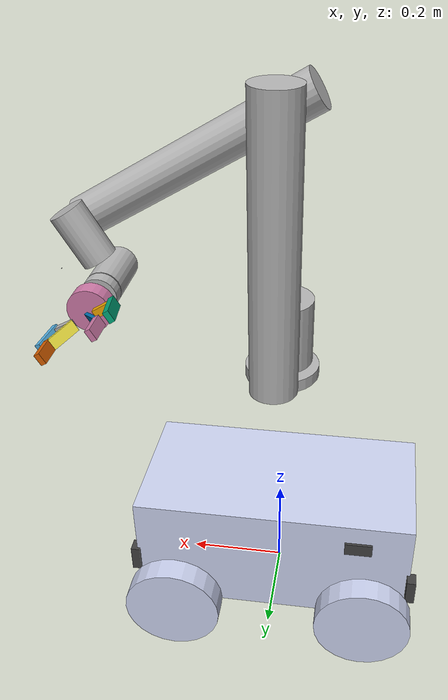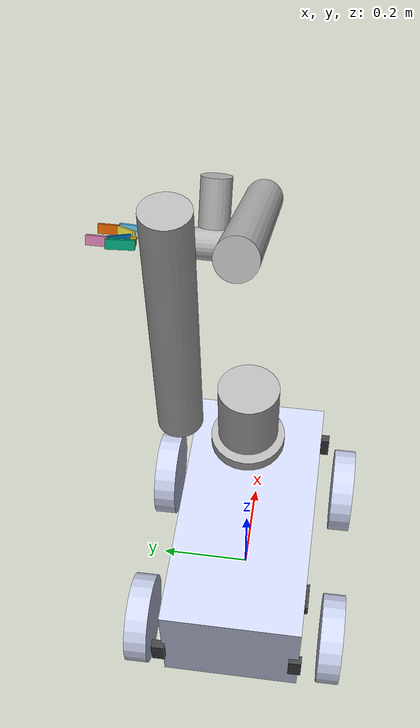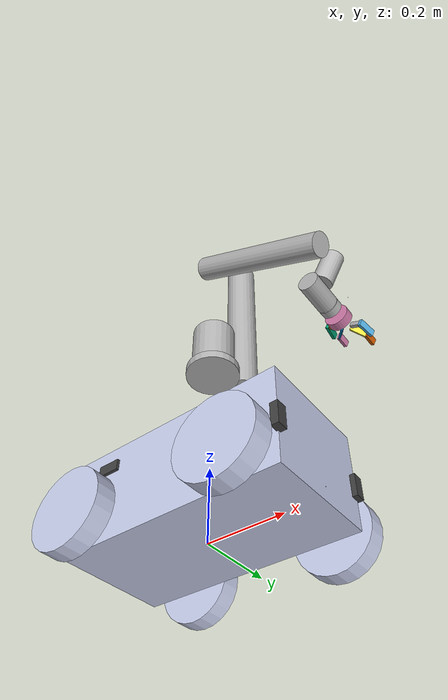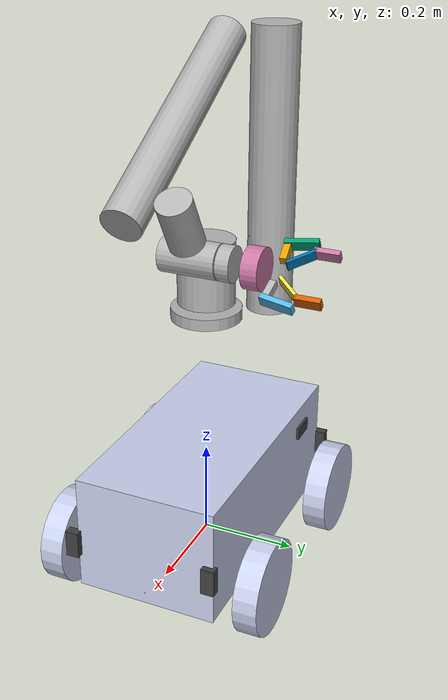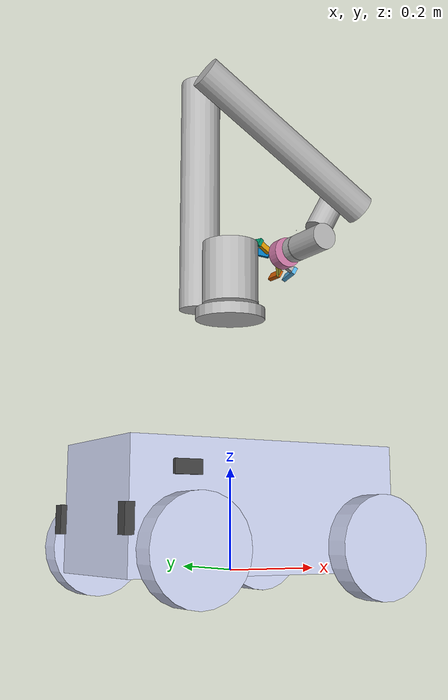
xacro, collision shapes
<?xml version="1.0"?>

<!--
  Project Name: ebot
  Created on:   2.10.2020
  Author: ROS team
  Copyright (c) 2020 eYantra IITB
-->

<robot name="ebot" xmlns:xacro="http://www.ros.org/wiki/xacro">

<!-- ebot arm -->
  <xacro:include filename="$(find ebot_description)/urdf/ebot.xacro" />
  <xacro:include filename="$(find ur_description)/urdf/common.gazebo.xacro" />
  <xacro:include filename="$(find ur_description)/urdf/e_ur5.urdf.xacro" />
  <xacro:include filename="$(find robotiq_85_description)/urdf/e_robotiq_85_gripper.urdf.xacro" />

  <xacro:ur5_robot prefix="" joint_limited="false"/>

  <joint name="ebot_joint" type="fixed">
    <parent link="ebot_base" />
    <child link = "base_link" />
    <origin xyz="0 0 0.521" rpy="0.0 0.0 0" />  <!--576 height from ground-->
  </joint>

  <xacro:robotiq_85_gripper prefix="" parent="wrist_3_link" >
    <origin xyz="0 0.1 0" rpy="0 0 ${pi/2}"/>
  </xacro:robotiq_85_gripper>

<!-- realsense camera for arm-->

 <joint name="intelrealsense2" type="fixed">
    <axis xyz="0 0 0" />
    <origin xyz="0 0.1 -0.08" rpy="3.14 0 1.57"/>
    <parent link="wrist_3_link"/>
    <child link="camera_link2"/>
  </joint>
<link name="camera_link2">
    <collision>
      <origin xyz="0.02 0 0" rpy="0 0 0"/>
      <geometry>
        <box size="0.001 0.001 0.001"/>
      </geometry>
    </collision>

    <visual>
      <origin xyz="0 0 0" rpy="1.5707 0 1.5707"/>
      <geometry>
         <mesh filename="package://ebot_description/meshes/NAVRS.STL" />
      </geometry>
    </visual>

    <inertial>
      <mass value="1e-5" />
      <origin xyz="0 0 0" rpy="0 0 0"/>
      <inertia ixx="0" ixy="0" ixz="0" iyy="0" iyz="0" izz="0" />
    </inertial>
  </link>

  <joint name="camera_optical_joint2" type="fixed">
    <origin xyz="0 0 0" rpy="${-pi/2} 0 ${-pi/2}"/>
    <parent link="camera_link2"/>
    <child link="camera_rgb_frame2"/>
  </joint>

  <link name="camera_rgb_frame2">
  </link>

  <joint name="camera_depth_joint2" type="fixed">
    <origin xyz="0 0 0" rpy="${-pi/2} 0 ${-pi/2}"/>
    <parent link="camera_link2"/>
    <child link="camera_depth_frame2"/>
  </joint>

    <link name="camera_depth_frame2">
  </link>

<gazebo reference="camera_link2">
    <sensor type="depth" name="intelrealsense2">
      <always_on>1</always_on>
      <visualize>true</visualize>
      <camera>
        <horizontal_fov>1.047</horizontal_fov>
        <image>
          <width>640</width>
          <height>480</height>
          <format>R8G8B8</format>
        </image>
        <depth_camera>

        </depth_camera>
        <clip>
          <near>0.1</near>
          <far>100</far>
        </clip>
      </camera>
      <plugin name="intelrealsense" filename="libgazebo_ros_openni_kinect.so">
        <alwaysOn>true</alwaysOn>
        <updateRate>10.0</updateRate>
        <cameraName>camera2</cameraName>
        <frameName>camera_depth_frame2</frameName>
        <imageTopicName>/camera/color/image_raw2</imageTopicName>
        <depthImageTopicName>/camera/depth/image_raw2</depthImageTopicName>
        <pointCloudTopicName>depth/points2</pointCloudTopicName>
        <cameraInfoTopicName>/camera/color/camera_info2</cameraInfoTopicName>
        <depthImageCameraInfoTopicName>/camera/depth/camera_info2</depthImageCameraInfoTopicName>
         <pointCloudCutoff>0.2</pointCloudCutoff>
         <pointCloudCutoffMax>10.0</pointCloudCutoffMax>
        <hackBaseline>0.07</hackBaseline>
        <distortionK1>0.0</distortionK1>
        <distortionK2>0.0</distortionK2>
        <distortionK3>0.0</distortionK3>
        <distortionT1>0.0</distortionT1>
        <distortionT2>0.0</distortionT2>
        <CxPrime>0.0</CxPrime>
        <Cx>0.0</Cx>
        <Cy>0.0</Cy>
        <focalLength>0.0</focalLength>
      </plugin>
    </sensor>
  </gazebo>

<!-- fixed realsense -->

</robot>

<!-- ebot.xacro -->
<!--
  Project Name: ebot
  Created on:   2.10.2020
  Author: ROS team
  Copyright (c) 2020 eYantra IITB
-->
<robot name="ebot" xmlns:xacro="http://www.ros.org/wiki/xacro">
<xacro:include filename="$(find ebot_description)/urdf/ebot.gazebo" />

<!--   base of the robot -->

  <link
    name="ebot_base">
    <inertial>
      <origin
   xyz="0 0.0 0.12"
        rpy="0 0 0" />
      <mass
        value="28" />
         <inertia ixx="0.356" ixy="0" ixz="0" iyy="0.9443" iyz="0" izz="1.008"/>
    </inertial>
    <visual>
      <origin
        xyz="0 0 0"
        rpy="0 0 0" />
      <geometry>
        <mesh
          filename="package://ebot_description/meshes/chassis.STL" />
      </geometry>
      <material
        name="">
        <color
          rgba="0.79216 0.81961 0.93333 1" />
      </material>
    </visual>
    <collision>
    <origin
        xyz="0 0.0 0.12"
        rpy="0 0 0" />
      <geometry>
     <box size="0.585 0.30 0.25"/>
      </geometry>
    </collision>
  </link>

<!-- front wheel right -->

  <link
    name="FWR">
    <inertial>
      <origin
        xyz="6.6592E-05 0.025016 -1.3483E-06"
        rpy="0 0 0" />
      <mass
        value="0.7" />
          <inertia ixx="0.003" ixy="0" ixz="0" iyy="0.0030" iyz="0" izz="0.0035"/>
    </inertial>
    <visual>
      <origin
        xyz="0 0 0"
        rpy="0 0 0" />
      <geometry>
        <mesh
          filename="package://ebot_description/meshes/FWR.STL" />
      </geometry>
      <material
        name="">
        <color
          rgba="0.79216 0.81961 0.93333 1" />
      </material>
    </visual>
    <collision>
      <origin
         xyz="0 0.025 0"
        rpy="1.57 1.57 0" />
      <geometry>
         <cylinder length="0.05" radius="0.1"/>
      </geometry>
    </collision>
  </link>
  <joint
    name="FWRJ"
    type="continuous">
    <origin
      xyz="0.202539503068943 -0.189027702306049 0.0449999999999943"
      rpy="-3.14159265358979 0.911096362238563 0.00679706827343889" />
    <parent
      link="ebot_base" />
    <child
      link="FWR" />
    <axis
      xyz="0 -1 0" />
  </joint>

<!-- front wheel left -->
  <link
    name="FWL">
    <inertial>
      <origin
        xyz="6.6594E-05 0.025016 -1.349E-06"
        rpy="0 0 0" />
      <mass
        value="0.7" />
           <inertia ixx="0.003" ixy="0" ixz="0" iyy="0.0030" iyz="0" izz="0.0035"/>
    </inertial>
    <visual>
      <origin
        xyz="0 0 0"
        rpy="0 0 0" />
      <geometry>
        <mesh
          filename="package://ebot_description/meshes/FWL.STL" />
      </geometry>
      <material
        name="">
        <color
          rgba="0.79216 0.81961 0.93333 1" />
      </material>
    </visual>
    <collision>
      <origin
         xyz="0 0.025 0"
        rpy="1.57 1.57 0" />
      <geometry>
         <cylinder length="0.05" radius="0.1"/>
      </geometry>
    </collision>
  </link>
  <joint
    name="FWLJ"
    type="continuous">
    <origin
      xyz="0.199948480594093 0.192163491981716 0.0450000000000047"
      rpy="0 0 0.00679706827344463" />
    <parent
      link="ebot_base" />
    <child
      link="FWL" />
    <axis
      xyz="0 1 0" />
  </joint>

<!--   rear wheel right -->
  <link
    name="RWR">
    <inertial>
      <origin
        xyz="6.6592E-05 0.025016 -1.3483E-06"
        rpy="0 0 0" />
      <mass
        value="0.7" />
           <inertia ixx="0.003" ixy="0" ixz="0" iyy="0.0030" iyz="0" izz="0.0035"/>
    </inertial>
    <visual>
      <origin
        xyz="0 0 0"
        rpy="0 0 0" />
      <geometry>
        <mesh
          filename="package://ebot_description/meshes/RWR.STL" />
      </geometry>
      <material
        name="">
        <color
          rgba="0.79216 0.81961 0.93333 1" />
      </material>
    </visual>
   <collision>
      <origin
         xyz="0 0.025 0"
        rpy="1.57 1.57 0" />
      <geometry>
         <cylinder length="0.05" radius="0.1"/>
      </geometry>
    </collision>
  </link>
  <joint
    name="RWRJ"
    type="continuous">
    <origin
      xyz="-0.197451256939211 -0.191746508680447 0.044999999999993"
      rpy="-3.14159265358979 0.544912084409921 0.00679706827344312" />
    <parent
      link="ebot_base" />
    <child
      link="RWR" />
    <axis
      xyz="0 -1 0" />
  </joint>

<!--   rear wheel left -->
  <link
    name="RWL">
    <inertial>
      <origin
        xyz="6.6594E-05 0.025016 -1.349E-06"
        rpy="0 0 0" />
      <mass
        value="0.7" />
        <inertia ixx="0.003" ixy="0" ixz="0" iyy="0.0030" iyz="0" izz="0.0035"/>
    </inertial>
    <visual>
      <origin
        xyz="0 0 0"
        rpy="0 0 0" />
      <geometry>
        <mesh
          filename="package://ebot_description/meshes/RWL.STL" />
      </geometry>
      <material
        name="">
        <color
          rgba="0.79216 0.81961 0.93333 1" />
      </material>
    </visual>
   <collision>
      <origin
         xyz="0 0.025 0"
        rpy="1.57 1.57 0" />
      <geometry>
         <cylinder length="0.05" radius="0.1"/>
      </geometry>
    </collision>
  </link>
  <joint
    name="RWLJ"
    type="continuous">
    <origin
      xyz="-0.200042279414009 0.189444685607321 0.0449999999999969"
      rpy="0 0 0.00679706827344463" />
    <parent
      link="ebot_base" />
    <child
      link="RWL" />
    <axis
      xyz="0 1 0" />
  </joint>

<!-- Sensors link -->

<!-- intel real sense -->

  <!-- Intel real sense Camera for 3D mapping-->
  <joint name="realsensejoint" type="fixed">
    <axis xyz="0 0 0" />
    <origin xyz="0.277944460576403 0.00208437301780086 0.0230507258091751" rpy="0 0 0"/>
    <parent link="ebot_base"/>
    <child link="camera_link"/>
  </joint>

  <link name="camera_link">
    <collision>
      <origin xyz="0.02 0 0" rpy="0 0 0"/>
      <geometry>0
        <box size="0.001 0.001 0.001"/>
      </geometry>
    </collision>

    <visual>
      <origin xyz="0 0 0" rpy="1.5707 0 1.5707"/>
      <geometry>
        <mesh filename="package://ebot_description/meshes/NAVRS.STL" />
      </geometry>
    </visual>

    <inertial>
      <mass value="1e-5" />
      <origin xyz="0 0 0" rpy="0 0 0"/>
      <inertia ixx="0" ixy="0" ixz="0" iyy="0" iyz="0" izz="0" />
    </inertial>
  </link>

  <joint name="camera_optical_joint" type="fixed">
    <origin xyz="0 0 0" rpy="${-pi/2} 0 ${-pi/2}"/>
    <parent link="camera_link"/>
    <child link="camera_rgb_frame"/>
  </joint>

  <link name="camera_rgb_frame">
  </link>

  <joint name="camera_depth_joint" type="fixed">
    <origin xyz="0 0 0" rpy="${-pi/2} 0 ${-pi/2}"/>
    <parent link="camera_link"/>
    <child link="camera_depth_frame"/>
  </joint>

    <link name="camera_depth_frame">
  </link>

<!-- intel real sense front-->

<!-- GPS antenna -->

 <!--  Rear real sense -->

<!-- LIDAR -->
<link name="laser">
    <origin rpy="0 0 0" xyz="0 0 0"/>
    <inertial>
      <mass value="0.09"/>
      <inertia ixx="4.275e-05" ixy="0" ixz="0" iyy="4.275e-05" iyz="0" izz="5.5125e-05"/>
    </inertial>
    <collision>
      <origin rpy="0 0 0" xyz="0 0 0"/>
      <geometry>
        <cylinder length="0.040" radius="0.030"/>
      </geometry>
    </collision>
    <visual>
      <origin rpy="0 0 0" xyz="0 0 0"/>
      <geometry>
        <cylinder length="0.040" radius="0.030"/>
      </geometry>
    </visual>
  </link>

  <joint name="rplidar_joint" type="fixed">
    <axis xyz="0 1 0"/>
    <origin xyz="0.255540836099039 0 0.18"
      rpy="0 0 0.00679706827344463" />

    <parent link="ebot_base"/>
    <child link="laser"/>
    <limit effort="1000" lower="0" upper="6.28" velocity="100"/>
    <axis rpy="0 0 0" xyz="0.02 0 0.178"/>
    <joint_properties damping="5.0" friction="1.0"/>
  </joint>

<!-- front ultrasonic sensor 1-->
  <link
    name="FUS1">
    <inertial>
      <origin
        xyz="-0.00265918092876655 2.08166817117217E-17 0.0100193625139959"
        rpy="0 0 0" />
      <mass
        value="0.0152532066391543" />
      <inertia
        ixx="4.77814992940302E-06"
        ixy="-2.01819824421892E-21"
        ixz="2.64657807499124E-08"
        iyy="1.003384637723E-06"
        iyz="-8.80528876343328E-21"
        izz="4.55679776636487E-06" />
    </inertial>
    <visual>
      <origin
        xyz="0 0 0"
        rpy="0 0 0" />
      <geometry>
        <mesh
          filename="package://ebot_description/meshes/FUS1.STL" />
      </geometry>
      <material
        name="">
        <color
          rgba="0.250980392156863 0.250980392156863 0.250980392156863 1" />
      </material>
    </visual>
    <collision>
      <origin
        xyz="0 0 0"
        rpy="0 0 0" />
      <geometry>
          <box size="0.019 0.057 0.028"/>
      </geometry>
    </collision>
  </link>
  <joint
    name="FUS1J"
    type="fixed">
    <origin
      xyz="0.297825909825268 -0.157279305693451 0.0977263808983278"
      rpy="-1.5707963267949 0 0.00679706827344463" />
    <parent
      link="ebot_base" />
    <child
      link="FUS1" />
    <axis
      xyz="0 0 0" />
  </joint>

<!-- front ultrasonic sensor 2 -->
  <link
    name="FUS2">
    <inertial>
      <origin
        xyz="-0.0026592 1.9949E-17 0.010019"
        rpy="0 0 0" />
      <mass
        value="0.015253" />
      <inertia
        ixx="4.7781E-06"
        ixy="-2.0925E-21"
        ixz="2.6466E-08"
        iyy="1.0034E-06"
        iyz="-9.4695E-21"
        izz="4.5568E-06" />
    </inertial>
    <visual>
      <origin
        xyz="0 0 0"
        rpy="0 0 0" />
      <geometry>
        <mesh
          filename="package://ebot_description/meshes/FUS2.STL" />
      </geometry>
      <material
        name="">
        <color
          rgba="0.25098 0.25098 0.25098 1" />
      </material>
    </visual>
    <collision>
      <origin
        xyz="0 0 0"
        rpy="0 0 0" />
      <geometry>
           <box size="0.019 0.057 0.028"/>
      </geometry>
    </collision>
  </link>
  <joint
    name="FUS2J"
    type="fixed">
    <origin
      xyz="0.295786805044471 0.142713764312663 0.0977263808983286"
      rpy="-1.5707963267949 0 0.00679706827344463" />
    <parent
      link="ebot_base" />
    <child
      link="FUS2" />
    <axis
      xyz="0 0 0" />
  </joint>

<!--   front ultrasonic sensor 3 -->
  <link
    name="FUS3">
    <inertial>
      <origin
        xyz="-0.0026592 5.5511E-17 0.010019"
        rpy="0 0 0" />
      <mass
        value="0.015253" />
      <inertia
        ixx="4.7781E-06"
        ixy="2.7832E-20"
        ixz="2.6466E-08"
        iyy="1.0034E-06"
        iyz="1.4502E-20"
        izz="4.5568E-06" />
    </inertial>
    <visual>
      <origin
        xyz="0 0 0"
        rpy="0 0 0" />
      <geometry>
        <mesh
          filename="package://ebot_description/meshes/FUS3.STL" />
      </geometry>
      <material
        name="">
        <color
          rgba="0.25098 0.25098 0.25098 1" />
      </material>
    </visual>
    <collision>
      <origin
        xyz="0 0 0"
        rpy="0 0 0" />
      <geometry>
           <box size="0.019 0.057 0.028"/>
      </geometry>
    </collision>
  </link>
  <joint
    name="FUS3J"
    type="fixed">
    <origin
      xyz="0.27274874909921 -0.0749478536996718 0.0424745013517897"
      rpy="0 0.785398163397449 0.00679706827344116" />
    <parent
      link="ebot_base" />
    <child
      link="FUS3" />
    <axis
      xyz="0 0 0" />
  </joint>

<!--   front ultrasonic sensor 4 -->
  <link
    name="FUS4">
    <inertial>
      <origin
        xyz="-0.00265918092876644 6.93889390390723E-17 0.0100193625139959"
        rpy="0 0 0" />
      <mass
        value="0.0152532066391543" />
      <inertia
        ixx="4.77814992940302E-06"
        ixy="2.8163959262392E-20"
        ixz="2.64657807499109E-08"
        iyy="1.003384637723E-06"
        iyz="2.09456577324828E-20"
        izz="4.55679776636487E-06" />
    </inertial>
    <visual>
      <origin
        xyz="0 0 0"
        rpy="0 0 0" />
      <geometry>
        <mesh
          filename="package://ebot_description/meshes/FUS4.STL" />
      </geometry>
      <material
        name="">
        <color
          rgba="0.250980392156863 0.250980392156863 0.250980392156863 1" />
      </material>
    </visual>
    <collision>
      <origin
        xyz="0 0 0"
        rpy="0 0 0" />
      <geometry>
           <box size="0.019 0.057 0.028"/>
      </geometry>
    </collision>
  </link>
  <joint
    name="FUS4J"
    type="fixed">
    <origin
      xyz="0.271702008645067 0.0790485889034664 0.0424745013517894"
      rpy="0 0.785398163397449 0.00679706827344116" />
    <parent
      link="ebot_base" />
    <child
      link="FUS4" />
    <axis
      xyz="0 0 0" />
  </joint>

<!--   Rear ultra sonic sensor 5 -->
  <link
    name="RUS5">
    <inertial>
      <origin
        xyz="-0.0026592 2.6021E-17 0.010019"
        rpy="0 0 0" />
      <mass
        value="0.015253" />
      <inertia
        ixx="4.7781E-06"
        ixy="-1.9723E-21"
        ixz="2.6466E-08"
        iyy="1.0034E-06"
        iyz="-7.7105E-21"
        izz="4.5568E-06" />
    </inertial>
    <visual>
      <origin
        xyz="0 0 0"
        rpy="0 0 0" />
      <geometry>
        <mesh
          filename="package://ebot_description/meshes/RUS5.STL" />
      </geometry>
      <material
        name="">
        <color
          rgba="0.25098 0.25098 0.25098 1" />
      </material>
    </visual>
    <collision>
      <origin
        xyz="0 0 0"
        rpy="0 0 0" />
      <geometry>
           <box size="0.019 0.057 0.028"/>
      </geometry>
    </collision>
  </link>
  <joint
    name="RUS5J"
    type="fixed">
    <origin
      xyz="-0.29532868617037 0.157696288994793 0.0977029437251515"
      rpy="-1.5707963267949 0 -3.13479558531634" />
    <parent
      link="ebot_base" />
    <child
      link="RUS5" />
    <axis
      xyz="0 0 0" />
  </joint>

<!--   Rear ultra sonic sensor 6 -->
  <link
    name="RUS6">
    <inertial>
      <origin
        xyz="-0.00265918092876644 2.34187669256869E-17 0.0100193625139959"
        rpy="0 0 0" />
      <mass
        value="0.0152532066391543" />
      <inertia
        ixx="4.77814992940302E-06"
        ixy="-1.34867897211379E-21"
        ixz="2.64657807499114E-08"
        iyy="1.003384637723E-06"
        iyz="-1.29818552470248E-20"
        izz="4.55679776636487E-06" />
    </inertial>
    <visual>
      <origin
        xyz="0 0 0"
        rpy="0 0 0" />
      <geometry>
        <mesh
          filename="package://ebot_description/meshes/RUS6.STL" />
      </geometry>
      <material
        name="">
        <color
          rgba="0.250980392156863 0.250980392156863 0.250980392156863 1" />
      </material>
    </visual>
    <collision>
      <origin
        xyz="0 0 0"
        rpy="0 0 0" />
      <geometry>
           <box size="0.019 0.057 0.028"/>
      </geometry>
    </collision>
  </link>
  <joint
    name="RUS6J"
    type="fixed">
    <origin
      xyz="-0.293289581389573 -0.14229678101132 0.0977029437251508"
      rpy="-1.5707963267949 0 -3.13479558531634" />
    <parent
      link="ebot_base" />
    <child
      link="RUS6" />
    <axis
      xyz="0 0 0" />
  </joint>

<!--   Right ultra sonic sensor 7 -->
  <link
    name="RHUS7">
    <inertial>
      <origin
        xyz="-0.00265918092876641 1.23570598198341E-12 0.0100193625139959"
        rpy="0 0 0" />
      <mass
        value="0.0152532066391543" />
      <inertia
        ixx="4.77814992940302E-06"
        ixy="3.27217392921119E-18"
        ixz="2.64657807499107E-08"
        iyy="1.003384637723E-06"
        iyz="4.38229124201629E-16"
        izz="4.55679776636487E-06" />
    </inertial>
    <visual>
      <origin
        xyz="0 0 0"
        rpy="0 0 0" />
      <geometry>
        <mesh
          filename="package://ebot_description/meshes/RHUS7.STL" />
      </geometry>
      <material
        name="">
        <color
          rgba="0.250980392156863 0.250980392156863 0.250980392156863 1" />
      </material>
    </visual>
    <collision>
      <origin
        xyz="0 0 0"
        rpy="0 0 0" />
      <geometry>
           <box size="0.019 0.057 0.028"/>
      </geometry>
    </collision>
  </link>
  <joint
    name="RHUS7J"
    type="fixed">
    <origin
      xyz="-0.17860231149778 -0.148017381955971 0.189449821416576"
      rpy="0 0 -1.56399925852145" />
    <parent
      link="ebot_base" />
    <child
      link="RHUS7" />
    <axis
      xyz="0 0 0" />
  </joint>

<!--   Right ultra sonicsensor 9 -->
  <link
    name="RHUS9">
    <inertial>
      <origin
        xyz="-0.0026592 6.9389E-18 0.010019"
        rpy="0 0 0" />
      <mass
        value="0.015253" />
      <inertia
        ixx="4.7781E-06"
        ixy="1.6008E-20"
        ixz="2.6466E-08"
        iyy="1.0034E-06"
        iyz="-1.185E-20"
        izz="4.5568E-06" />
    </inertial>
    <visual>
      <origin
        xyz="0 0 0"
        rpy="0 0 0" />
      <geometry>
        <mesh
          filename="package://ebot_description/meshes/RHUS9.STL" />
      </geometry>
      <material
        name="">
        <color
          rgba="0.25098 0.25098 0.25098 1" />
      </material>
    </visual>
    <collision>
      <origin
        xyz="0 0 0"
        rpy="0 0 0" />
      <geometry>
           <box size="0.019 0.057 0.028"/>
      </geometry>
    </collision>
  </link>
  <joint
    name="RHUS9J"
    type="fixed">
    <origin
      xyz="0.141804076845343 -0.0977216096162414 0.196076309026378"
      rpy="-0.00186883076605492 0.123098458475999 -0.786255211903501" />
    <parent
      link="ebot_base" />
    <child
      link="RHUS9" />
    <axis
      xyz="0 0 0" />
  </joint>

<!--   Left ultra sonic sensor 9 -->
  <link
    name="LHUS9">
    <inertial>
      <origin
        xyz="-0.00265918092876642 -1.2353174039248E-12 0.0100193625139958"
        rpy="0 0 0" />
      <mass
        value="0.0152532066391543" />
      <inertia
        ixx="4.77814992940302E-06"
        ixy="-3.2538981368926E-18"
        ixz="2.64657807499116E-08"
        iyy="1.003384637723E-06"
        iyz="-4.38135627183199E-16"
        izz="4.55679776636487E-06" />
    </inertial>
    <visual>
      <origin
        xyz="0 0 0"
        rpy="0 0 0" />
      <geometry>
        <mesh
          filename="package://ebot_description/meshes/LHUS9.STL" />
      </geometry>
      <material
        name="">
        <color
          rgba="0.250980392156863 0.250980392156863 0.250980392156863 1" />
      </material>
    </visual>
    <collision>
      <origin
        xyz="0 0 0"
        rpy="0 0 0" />
      <geometry>
           <box size="0.019 0.057 0.028"/>
      </geometry>
    </collision>
  </link>
  <joint
    name="LHUS9J"
    type="fixed">
    <origin
      xyz="-0.180600634182961 0.14597582665002 0.189449821416576"
      rpy="0 0 1.57759339506834" />
    <parent
      link="ebot_base" />
    <child
      link="LHUS9" />
    <axis
      xyz="0 0 0" />
  </joint>

<!--   left ultra sonic sensor 10 -->
  <link
    name="LHUS10">
    <inertial>
      <origin
        xyz="-0.0026592 -2.0817E-17 0.010019"
        rpy="0 0 0" />
      <mass
        value="0.015253" />
      <inertia
        ixx="4.7781E-06"
        ixy="1.1539E-20"
        ixz="2.6466E-08"
        iyy="1.0034E-06"
        iyz="-1.2651E-20"
        izz="4.5568E-06" />
    </inertial>
    <visual>
      <origin
        xyz="0 0 0"
        rpy="0 0 0" />
      <geometry>
        <mesh
          filename="package://ebot_description/meshes/LHUS10.STL" />
      </geometry>
      <material
        name="">
        <color
          rgba="0.25098 0.25098 0.25098 1" />
      </material>
    </visual>
    <collision>
      <origin
        xyz="0 0 0"
        rpy="0 0 0" />
      <geometry>
           <box size="0.019 0.057 0.028"/>
      </geometry>
    </collision>
  </link>
  <joint
    name="LHUS10J"
    type="fixed">
    <origin
      xyz="0.14045985551618 0.10004021562239 0.196076309026377"
      rpy="0.00186883076604301 0.123098458475999 0.799849348450393" />
    <parent
      link="ebot_base" />
    <child
      link="LHUS10" />
    <axis
      xyz="0 0 0" />
  </joint>

<!-- IMU -->
  <link name="imu_link">
    <collision>
      <origin xyz="0 0 0" rpy="0 0 0"/>
      <geometry>
        <box size="0.02 0.015 0.008"/>
      </geometry>
    </collision>

    <visual>
      <origin xyz="0 0 0" rpy="0 0 0"/>
    <geometry>
        <box size="0.02 0.015 0.008"/>
      </geometry>
    </visual>

    <inertial>
      <mass value="1e-5" />
      <origin xyz="0 0 0" rpy="0 0 0"/>
      <inertia ixx="0" ixy="0" ixz="0" iyy="0" iyz="0" izz="0" />
    </inertial>
  </link>

  <joint
    name="imujoint"
    type="fixed">
    <origin
      xyz="0 0 0.2"
      rpy="0 0 0" />
    <parent
      link="ebot_base" />
    <child
      link="imu_link" />
    <axis
      xyz="0 0 0" />
  </joint>

</robot>

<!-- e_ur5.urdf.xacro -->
<robot xmlns:xacro="http://wiki.ros.org/xacro">

  <xacro:include filename="$(find ur_description)/urdf/ur.transmission.xacro" />
  <xacro:include filename="$(find ur_description)/urdf/ur.gazebo.xacro" />

  <xacro:macro name="cylinder_inertial" params="radius length mass *origin">
    <inertial>
      <mass value="${mass}" />
      <xacro:insert_block name="origin" />
      <inertia ixx="${0.0833333 * mass * (3 * radius * radius + length * length)}" ixy="0.0" ixz="0.0"
        iyy="${0.0833333 * mass * (3 * radius * radius + length * length)}" iyz="0.0"
        izz="${0.5 * mass * radius * radius}" />
    </inertial>
  </xacro:macro>

  <xacro:macro name="ur5_robot" params="prefix joint_limited
    shoulder_pan_lower_limit:=${-pi}    shoulder_pan_upper_limit:=${pi}
    shoulder_lift_lower_limit:=${-pi}    shoulder_lift_upper_limit:=${pi}
    elbow_joint_lower_limit:=${-pi}    elbow_joint_upper_limit:=${pi}
    wrist_1_lower_limit:=${-pi}    wrist_1_upper_limit:=${pi}
    wrist_2_lower_limit:=${-pi}    wrist_2_upper_limit:=${pi}
    wrist_3_lower_limit:=${-pi}    wrist_3_upper_limit:=${pi}
    transmission_hw_interface:=hardware_interface/PositionJointInterface
    safety_limits:=false safety_pos_margin:=0.15
    safety_k_position:=20">

    <!-- Inertia parameters -->
    <xacro:property name="base_mass" value="4.0" />  <!-- This mass might be incorrect -->
    <xacro:property name="shoulder_mass" value="3.7000" />
    <xacro:property name="upper_arm_mass" value="8.3930" />
    <xacro:property name="forearm_mass" value="2.2750" />
    <xacro:property name="wrist_1_mass" value="1.2190" />
    <xacro:property name="wrist_2_mass" value="1.2190" />
    <xacro:property name="wrist_3_mass" value="0.1879" />

    <xacro:property name="shoulder_cog" value="0.0 0.00193 -0.02561" />
    <xacro:property name="upper_arm_cog" value="0.0 -0.024201 0.2125" />
    <xacro:property name="forearm_cog" value="0.0 0.0265 0.11993" />
    <xacro:property name="wrist_1_cog" value="0.0 0.110949 0.01634" />
    <xacro:property name="wrist_2_cog" value="0.0 0.0018 0.11099" />
    <xacro:property name="wrist_3_cog" value="0.0 0.001159 0.0" />

    <!-- Kinematic model -->
    <!-- Properties from urcontrol.conf -->
    <xacro:property name="d1" value="0.089159" />
    <xacro:property name="a2" value="-0.42500" />
    <xacro:property name="a3" value="-0.39225" />
    <xacro:property name="d4" value="0.10915" />
    <xacro:property name="d5" value="0.09465" />
    <xacro:property name="d6" value="0.0823" />

    <!-- Arbitrary offsets for shoulder/elbow joints -->
    <xacro:property name="shoulder_offset" value="0.13585" />  <!-- measured from model -->
    <xacro:property name="elbow_offset" value="-0.1197" /> <!-- measured from model -->

    <!-- link lengths used in model -->
    <xacro:property name="shoulder_height" value="${d1}" />
    <xacro:property name="upper_arm_length" value="${-a2}" />
    <xacro:property name="forearm_length" value="${-a3}" />
    <xacro:property name="wrist_1_length" value="${d4 - elbow_offset - shoulder_offset}" />
    <xacro:property name="wrist_2_length" value="${d5}" />
    <xacro:property name="wrist_3_length" value="${d6}" />
    <!--property name="shoulder_height" value="0.089159" /-->
    <!--property name="shoulder_offset" value="0.13585" /-->  <!-- shoulder_offset - elbow_offset + wrist_1_length = 0.10915 -->
    <!--property name="upper_arm_length" value="0.42500" /-->
    <!--property name="elbow_offset" value="0.1197" /-->       <!-- CAD measured -->
    <!--property name="forearm_length" value="0.39225" /-->
    <!--property name="wrist_1_length" value="0.093" /-->     <!-- CAD measured -->
    <!--property name="wrist_2_length" value="0.09465" /-->   <!-- In CAD this distance is 0.930, but in the spec it is 0.09465 -->
    <!--property name="wrist_3_length" value="0.0823" /-->

    <xacro:property name="shoulder_radius" value="0.060" />   <!-- manually measured -->
    <xacro:property name="upper_arm_radius" value="0.054" />  <!-- manually measured -->
    <xacro:property name="elbow_radius" value="0.060" />      <!-- manually measured -->
    <xacro:property name="forearm_radius" value="0.040" />    <!-- manually measured -->
    <xacro:property name="wrist_radius" value="0.045" />      <!-- manually measured -->

    <link name="${prefix}base_link" >
      <visual>
        <geometry>
          <mesh filename="package://ur_description/meshes/ur5/visual/base.dae" />
        </geometry>
        <material name="LightGrey">
          <color rgba="0.7 0.7 0.7 1.0"/>
        </material>
      </visual>
      <collision>

        <geometry>
                 <cylinder length="0.024" radius="0.0735"/>
        </geometry>
      </collision>
      <xacro:cylinder_inertial radius="0.06" length="0.05" mass="${base_mass}">
        <origin xyz="0.0 0.0 0.0" rpy="0 0 0" />
      </xacro:cylinder_inertial>
    </link>

    <joint name="${prefix}shoulder_pan_joint" type="revolute">
      <parent link="${prefix}base_link" />
      <child link = "${prefix}shoulder_link" />
      <origin xyz="0.0 0.0 ${shoulder_height}" rpy="0.0 0.0 0.0" />
      <axis xyz="0 0 1" />
      <xacro:unless value="${joint_limited}">
        <limit lower="${-2.0 * pi}" upper="${2.0 * pi}" effort="150.0" velocity="3.15"/>
        <xacro:if value="${safety_limits}">
          <safety_controller soft_lower_limit="${-2.0 * pi + safety_pos_margin}" soft_upper_limit="${2.0 * pi - safety_pos_margin}" k_position="${safety_k_position}" k_velocity="0.0"/>
        </xacro:if>
      </xacro:unless>
      <xacro:if value="${joint_limited}">
        <limit lower="${shoulder_pan_lower_limit}" upper="${shoulder_pan_upper_limit}" effort="150.0" velocity="3.15"/>
        <xacro:if value="${safety_limits}">
          <safety_controller soft_lower_limit="${shoulder_pan_lower_limit + safety_pos_margin}" soft_upper_limit="${shoulder_pan_upper_limit - safety_pos_margin}" k_position="${safety_k_position}" k_velocity="0.0"/>
        </xacro:if>
      </xacro:if>
      <dynamics damping="0.0" friction="0.0"/>
    </joint>

    <link name="${prefix}shoulder_link">
      <visual>
        <geometry>
          <mesh filename="package://ur_description/meshes/ur5/visual/shoulder.dae" />
        </geometry>
        <material name="LightGrey">
          <color rgba="0.7 0.7 0.7 1.0"/>
        </material>
      </visual>
      <collision>
        <geometry>
           <cylinder length="0.134" radius="0.0595"/>
        </geometry>
      </collision>
      <xacro:cylinder_inertial radius="0.06" length="0.15" mass="${shoulder_mass}">
        <origin xyz="0.0 0.0 0.0" rpy="0 0 0" />
      </xacro:cylinder_inertial>
    </link>

    <joint name="${prefix}shoulder_lift_joint" type="revolute">
      <parent link="${prefix}shoulder_link" />
      <child link = "${prefix}upper_arm_link" />
      <origin xyz="0.0 ${shoulder_offset} 0.0" rpy="0.0 0.0 0.0" />
      <axis xyz="0 1 0" />
      <xacro:unless value="${joint_limited}">
        <limit lower="${-2.0 * pi}" upper="${2.0 * pi}" effort="150.0" velocity="3.15"/>
        <xacro:if value="${safety_limits}">
          <safety_controller soft_lower_limit="${-2.0 * pi + safety_pos_margin}" soft_upper_limit="${2.0 * pi - safety_pos_margin}" k_position="${safety_k_position}" k_velocity="0.0"/>
        </xacro:if>
      </xacro:unless>
      <xacro:if value="${joint_limited}">
        <limit lower="${shoulder_lift_lower_limit}" upper="${shoulder_lift_upper_limit}" effort="150.0" velocity="3.15"/>
        <xacro:if value="${safety_limits}">
          <safety_controller soft_lower_limit="${shoulder_lift_lower_limit + safety_pos_margin}" soft_upper_limit="${shoulder_lift_upper_limit - safety_pos_margin}" k_position="${safety_k_position}" k_velocity="0.0"/>
        </xacro:if>
      </xacro:if>
      <dynamics damping="0.0" friction="0.0"/>
    </joint>

    <link name="${prefix}upper_arm_link">
      <visual>
        <geometry>
          <mesh filename="package://ur_description/meshes/ur5/visual/upperarm.dae" />
        </geometry>
        <material name="LightGrey">
          <color rgba="0.7 0.7 0.7 1.0"/>
        </material>
      </visual>
      <collision>
        <origin rpy="0 0 0" xyz="0.0 0.0 0.22"/>
        <geometry>
               <cylinder length="0.545" radius="0.0450"/>
        </geometry>
      </collision>
      <xacro:cylinder_inertial radius="0.06" length="0.56" mass="${upper_arm_mass}">
        <origin xyz="0.0 0.0 0.28" rpy="0 0 0" />
      </xacro:cylinder_inertial>
    </link>

    <joint name="${prefix}elbow_joint" type="revolute">
      <parent link="${prefix}upper_arm_link" />
      <child link = "${prefix}forearm_link" />
      <origin xyz="0.0 ${elbow_offset} ${upper_arm_length}" rpy="0.0 ${2*pi/3} 0.0" />
      <axis xyz="0 1 0" />
      <xacro:unless value="${joint_limited}">
        <limit lower="${-pi}" upper="${pi}" effort="150.0" velocity="3.15"/>
        <xacro:if value="${safety_limits}">
          <safety_controller soft_lower_limit="${-2.0 * pi + safety_pos_margin}" soft_upper_limit="${2.0 * pi - safety_pos_margin}" k_position="${safety_k_position}" k_velocity="0.0"/>
        </xacro:if>
      </xacro:unless>
      <xacro:if value="${joint_limited}">
        <limit lower="${elbow_joint_lower_limit}" upper="${elbow_joint_upper_limit}" effort="150.0" velocity="3.15"/>
        <xacro:if value="${safety_limits}">
          <safety_controller soft_lower_limit="${elbow_joint_lower_limit + safety_pos_margin}" soft_upper_limit="${elbow_joint_upper_limit - safety_pos_margin}" k_position="${safety_k_position}" k_velocity="0.0"/>
        </xacro:if>
      </xacro:if>
      <dynamics damping="0.0" friction="0.0"/>
    </joint>

    <link name="${prefix}forearm_link">
      <visual>
        <geometry>
          <mesh filename="package://ur_description/meshes/ur5/visual/forearm.dae" />
        </geometry>
        <material name="LightGrey">
          <color rgba="0.7 0.7 0.7 1.0"/>
        </material>
      </visual>
      <collision>
        <origin rpy="0 0 0" xyz="0.0 0.0 0.18"/>
        <geometry>
          <cylinder length="0.489" radius="0.0380"/>
        </geometry>
      </collision>
      <xacro:cylinder_inertial radius="0.06" length="${-a3}" mass="${forearm_mass}">
        <origin xyz="0.0 0.0 ${-a3/2}" rpy="0 0 0" />
      </xacro:cylinder_inertial>
    </link>

    <joint name="${prefix}wrist_1_joint" type="revolute">
      <parent link="${prefix}forearm_link" />
      <child link = "${prefix}wrist_1_link" />
      <origin xyz="0.0 0.0 ${forearm_length}" rpy="0.0 ${pi / 2.0} 0.0" />
      <axis xyz="0 1 0" />
      <xacro:unless value="${joint_limited}">
        <limit lower="${-2.0 * pi}" upper="${2.0 * pi}" effort="28.0" velocity="3.2"/>
        <xacro:if value="${safety_limits}">
          <safety_controller soft_lower_limit="${-2.0 * pi + safety_pos_margin}" soft_upper_limit="${2.0 * pi - safety_pos_margin}" k_position="${safety_k_position}" k_velocity="0.0"/>
        </xacro:if>
      </xacro:unless>
      <xacro:if value="${joint_limited}">
        <limit lower="${wrist_1_lower_limit}" upper="${wrist_1_upper_limit}" effort="28.0" velocity="3.2"/>
        <xacro:if value="${safety_limits}">
          <safety_controller soft_lower_limit="${wrist_1_lower_limit + safety_pos_margin}" soft_upper_limit="${wrist_1_upper_limit - safety_pos_margin}" k_position="${safety_k_position}" k_velocity="0.0"/>
        </xacro:if>
      </xacro:if>
      <dynamics damping="0.0" friction="0.0"/>
    </joint>

    <link name="${prefix}wrist_1_link">
      <visual>
        <geometry>
          <mesh filename="package://ur_description/meshes/ur5/visual/wrist1.dae" />
        </geometry>
        <material name="LightGrey">
          <color rgba="0.7 0.7 0.7 1.0"/>
        </material>
      </visual>
      <collision>
        <origin rpy="0 0 0" xyz="0.0 0.093 0.008"/>
        <geometry>
          <cylinder length="0.100" radius="0.0320"/>
        </geometry>
      </collision>
      <xacro:cylinder_inertial radius="0.06" length="0.12" mass="${wrist_1_mass}">
        <origin xyz="0.0 ${wrist_1_length} 0.0" rpy="0 0 0" />
      </xacro:cylinder_inertial>
    </link>

    <joint name="${prefix}wrist_2_joint" type="revolute">
      <parent link="${prefix}wrist_1_link" />
      <child link = "${prefix}wrist_2_link" />
      <origin xyz="0.0 ${wrist_1_length} 0.0" rpy="0.0 0.0 0.0" />
      <axis xyz="0 0 1" />
      <xacro:unless value="${joint_limited}">
        <limit lower="${-2.0 * pi}" upper="${2.0 * pi}" effort="28.0" velocity="3.2"/>
        <xacro:if value="${safety_limits}">
          <safety_controller soft_lower_limit="${-2.0 * pi + safety_pos_margin}" soft_upper_limit="${2.0 * pi - safety_pos_margin}" k_position="${safety_k_position}" k_velocity="0.0"/>
        </xacro:if>
      </xacro:unless>
      <xacro:if value="${joint_limited}">
        <limit lower="${wrist_2_lower_limit}" upper="${wrist_2_upper_limit}" effort="28.0" velocity="3.2"/>
        <xacro:if value="${safety_limits}">
          <safety_controller soft_lower_limit="${wrist_2_lower_limit + safety_pos_margin}" soft_upper_limit="${wrist_2_upper_limit - safety_pos_margin}" k_position="${safety_k_position}" k_velocity="0.0"/>
        </xacro:if>
      </xacro:if>
      <dynamics damping="0.0" friction="0.0"/>
    </joint>

    <link name="${prefix}wrist_2_link">
      <visual>
        <geometry>
          <mesh filename="package://ur_description/meshes/ur5/visual/wrist2.dae" />
        </geometry>
        <material name="LightGrey">
          <color rgba="0.7 0.7 0.7 1.0"/>
        </material>
      </visual>
      <collision>
        <origin rpy="1.57 0 0" xyz="0.0 0.0 0.09465"/>
        <geometry>
           <cylinder length="0.105" radius="0.0320"/>
        </geometry>
      </collision>
      <xacro:cylinder_inertial radius="0.06" length="0.12" mass="${wrist_2_mass}">
        <origin xyz="0.0 0.0 ${wrist_2_length}" rpy="0 0 0" />
      </xacro:cylinder_inertial>
    </link>

    <joint name="${prefix}wrist_3_joint" type="revolute">
      <parent link="${prefix}wrist_2_link" />
      <child link = "${prefix}wrist_3_link" />
      <origin xyz="0.0 0.0 ${wrist_2_length}" rpy="0.0 0.0 0.0" />
      <axis xyz="0 1 0" />
      <xacro:unless value="${joint_limited}">
        <limit lower="${-2.0 * pi}" upper="${2.0 * pi}" effort="28.0" velocity="3.2"/>
        <xacro:if value="${safety_limits}">
          <safety_controller soft_lower_limit="${-2.0 * pi + safety_pos_margin}" soft_upper_limit="${2.0 * pi - safety_pos_margin}" k_position="${safety_k_position}" k_velocity="0.0"/>
        </xacro:if>
      </xacro:unless>
      <xacro:if value="${joint_limited}">
        <limit lower="${wrist_3_lower_limit}" upper="${wrist_3_upper_limit}" effort="28.0" velocity="3.2"/>
        <xacro:if value="${safety_limits}">
          <safety_controller soft_lower_limit="${wrist_3_lower_limit + safety_pos_margin}" soft_upper_limit="${wrist_3_upper_limit - safety_pos_margin}" k_position="${safety_k_position}" k_velocity="0.0"/>
        </xacro:if>
      </xacro:if>
      <dynamics damping="0.0" friction="0.0"/>
    </joint>

    <link name="${prefix}wrist_3_link">
      <visual>
        <geometry>
          <mesh filename="package://ur_description/meshes/ur5/visual/wrist3.dae" />
        </geometry>
        <material name="LightGrey">
          <color rgba="0.7 0.7 0.7 1.0"/>
        </material>
      </visual>
      <collision>
         <origin rpy="1.57 0.0 0" xyz="0.0 0.067 0.0"/>
        <geometry>
            <cylinder length="0.0245" radius="0.0320"/>
        </geometry>
      </collision>
      <xacro:cylinder_inertial radius="0.0375" length="0.0345" mass="${wrist_3_mass}">
        <origin xyz="0.0 ${wrist_3_length - 0.0345/2} 0.0" rpy="${pi/2} 0 0" />
      </xacro:cylinder_inertial>
    </link>

    <joint name="${prefix}ee_fixed_joint" type="fixed">
      <parent link="${prefix}wrist_3_link" />
      <child link = "${prefix}ee_link" />
      <origin xyz="0.0 ${wrist_3_length} 0.0" rpy="0.0 0.0 ${pi/2.0}" />
    </joint>

    <link name="${prefix}ee_link">
      <collision>
        <geometry>
          <box size="0.01 0.01 0.01"/>
        </geometry>
        <origin rpy="0 0 0" xyz="-0.01 0 0"/>
      </collision>
    </link>

    <xacro:ur_arm_transmission prefix="${prefix}" hw_interface="${transmission_hw_interface}" />
    <xacro:ur_arm_gazebo prefix="${prefix}" />

    <!-- ROS base_link to UR 'Base' Coordinates transform -->
    <link name="${prefix}base"/>
    <joint name="${prefix}base_link-base_fixed_joint" type="fixed">
      <!-- NOTE: this rotation is only needed as long as base_link itself is
                 not corrected wrt the real robot (ie: rotated over 180
                 degrees)
      -->
      <origin xyz="0 0 0" rpy="0 0 ${-pi}"/>
      <parent link="${prefix}base_link"/>
      <child link="${prefix}base"/>
    </joint>

    <!-- Frame coincident with all-zeros TCP on UR controller -->
    <link name="${prefix}tool0"/>
    <joint name="${prefix}wrist_3_link-tool0_fixed_joint" type="fixed">
      <origin xyz="0 ${wrist_3_length} 0" rpy="${pi/-2.0} 0 0"/>
      <parent link="${prefix}wrist_3_link"/>
      <child link="${prefix}tool0"/>
    </joint>

  </xacro:macro>
</robot>

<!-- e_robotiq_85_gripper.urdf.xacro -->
<robot name="robotiq_85_gripper" xmlns:xacro="http://ros.org/wiki/xacro">
    <xacro:include filename="$(find robotiq_85_description)/urdf/robotiq_85_gripper.transmission.xacro" />

    <xacro:macro name="robotiq_85_gripper" params="prefix parent *origin">

        <joint name="${prefix}gripper_base_joint" type="fixed">
            <parent link="${parent}"/>
            <child link="${prefix}gripper_base_link"/>
            <xacro:insert_block name="origin"/>
        </joint>

        <link name="${prefix}gripper_base_link">
            <visual>
                <geometry>
                    <mesh filename="package://robotiq_85_description/meshes/visual/robotiq_85_base_link.dae"/>
                </geometry>
            </visual>
            <collision>
                <origin rpy="0 1.57 0" xyz="0.017 0 0"/>
                <geometry>
                       <cylinder length="0.030" radius="0.0375"/>
                </geometry>
            </collision>
            <inertial>
                <mass value="0.636951" />
                <origin xyz="0.0 0.0 0.0" />
                <inertia ixx = "0.000380" ixy = "0.000000" ixz = "0.000000"
                         iyx = "0.000000" iyy = "0.001110" iyz = "0.000000"
                         izx = "0.000000" izy = "0.000000" izz = "0.001171" />
            </inertial>
        </link>

        <gazebo reference="${prefix}gripper_base_link">
            <implicitSpringDamper>1</implicitSpringDamper>
            <mu1>100000</mu1>
            <mu2>100000</mu2>
            <kp>100000000.0</kp>
            <kd>1.0</kd>
        </gazebo>

        <joint name="${prefix}gripper_finger1_joint" type="revolute">
            <parent link="${prefix}gripper_base_link"/>
            <child link="${prefix}gripper_finger1_knuckle_link"/>
            <axis xyz="0 0 1"/>
            <origin rpy="${pi} 0.0 0.0" xyz="0.05490451627 0.03060114443 0.0"/>
            <limit lower="0.0" upper="0.804" velocity="2.0" effort="1000"/>
        </joint>

        <joint name="${prefix}gripper_finger2_joint" type="revolute">
            <parent link="${prefix}gripper_base_link"/>
            <child link="${prefix}gripper_finger2_knuckle_link"/>
            <axis xyz="0 0 1"/>
            <origin rpy="0.0 0.0 0.0" xyz="0.05490451627 -0.03060114443 0.0"/>
            <limit lower="-3.14" upper="3.14" velocity="100.0" effort="1000"/>
            <mimic joint="${prefix}gripper_finger1_joint"/>
        </joint>

        <link name="${prefix}gripper_finger1_knuckle_link">
            <visual>
                <geometry>
                    <mesh filename="package://robotiq_85_description/meshes/visual/robotiq_85_knuckle_link.dae"/>
                </geometry>
            </visual>
            <collision>

                    <origin rpy="0 0 -0.0873" xyz="0 -0.01 0"/>
                <geometry>
                     <box size="0.012 0.035 0.014" />
                </geometry>
            </collision>
            <inertial>
                <mass value="0.018491" />
                <origin xyz="0.0 0.0 0.0" />
                <inertia ixx = "0.000009" ixy = "-0.000001" ixz = "0.000000"
                         iyx = "-0.000001" iyy = "0.000001" iyz = "0.000000"
                         izx = "0.000000" izy = "0.000000" izz = "0.000010" />
            </inertial>
        </link>

        <gazebo reference="${prefix}gripper_finger1_knuckle_link">
            <implicitSpringDamper>1</implicitSpringDamper>
            <mu1>100000</mu1>
            <mu2>100000</mu2>
            <kp>100000000.0</kp>
            <kd>1.0</kd>
        </gazebo>

        <link name="${prefix}gripper_finger2_knuckle_link">
            <visual>
                <geometry>
                    <mesh filename="package://robotiq_85_description/meshes/visual/robotiq_85_knuckle_link.dae"/>
                </geometry>
            </visual>
            <collision>
                  <origin rpy="0 0 -0.0873" xyz="0 -0.01 0"/>
                <geometry>
                       <box size="0.012 0.035 0.014" />
                </geometry>
            </collision>
            <inertial>
                <mass value="0.018491" />
                <origin xyz="0.0 0.0 0.0" />
                <inertia ixx = "0.000009" ixy = "-0.000001" ixz = "0.000000"
                         iyx = "-0.000001" iyy = "0.000001" iyz = "0.000000"
                         izx = "0.000000" izy = "0.000000" izz = "0.000010" />
            </inertial>
        </link>

        <gazebo reference="${prefix}gripper_finger2_knuckle_link">
            <implicitSpringDamper>1</implicitSpringDamper>
            <mu1>100000</mu1>
            <mu2>100000</mu2>
            <kp>100000000.0</kp>
            <kd>1.0</kd>
        </gazebo>

        <joint name="${prefix}gripper_finger1_finger_joint" type="fixed">
            <parent link="${prefix}gripper_finger1_knuckle_link"/>
            <child link="${prefix}gripper_finger1_finger_link"/>
            <origin xyz="-0.00408552455 -0.03148604435 0.0" rpy="0 0 0" />
        </joint>

        <joint name="${prefix}gripper_finger2_finger_joint" type="fixed">
            <parent link="${prefix}gripper_finger2_knuckle_link"/>
            <child link="${prefix}gripper_finger2_finger_link"/>
            <origin xyz="-0.00408552455 -0.03148604435 0.0" rpy="0 0 0" />
        </joint>

        <link name="${prefix}gripper_finger1_finger_link">
            <visual>
                <geometry>
                    <mesh filename="package://robotiq_85_description/meshes/visual/robotiq_85_finger_link.dae"/>
                </geometry>
            </visual>
            <collision>
                 <origin rpy="0 0 -0.175" xyz="0.025 -0.002 0"/>
                <geometry>
                    <box size="0.0591 0.010 0.020" />
                </geometry>
            </collision>
            <inertial>
                <mass value="0.027309" />
                <origin xyz="0.0 0.0 0.0" />
                <inertia ixx = "0.000003" ixy = "-0.000002" ixz = "0.000000"
                         iyx = "-0.000002" iyy = "0.000021" iyz = "0.000000"
                         izx = "0.000000" izy = "0.000000" izz = "0.000020" />
            </inertial>
        </link>

        <gazebo reference="${prefix}gripper_finger1_finger_link">
            <implicitSpringDamper>1</implicitSpringDamper>
            <mu1>100000</mu1>
            <mu2>100000</mu2>
            <kp>100000000.0</kp>
            <kd>1.0</kd>
        </gazebo>

        <link name="${prefix}gripper_finger2_finger_link">
            <visual>
                <geometry>
                    <mesh filename="package://robotiq_85_description/meshes/visual/robotiq_85_finger_link.dae"/>
                </geometry>
            </visual>
            <collision>
                 <origin rpy="0 0 -0.175" xyz="0.025 -0.002 0"/>
                <geometry>
                    <box size="0.0591 0.010 0.020" />
                </geometry>
            </collision>
            <inertial>
                <mass value="0.027309" />
                <origin xyz="0.0 0.0 0.0" />
                <inertia ixx = "0.000003" ixy = "-0.000002" ixz = "0.000000"
                         iyx = "-0.000002" iyy = "0.000021" iyz = "0.000000"
                         izx = "0.000000" izy = "0.000000" izz = "0.000020" />
            </inertial>
        </link>

        <gazebo reference="${prefix}gripper_finger2_finger_link">
            <implicitSpringDamper>1</implicitSpringDamper>
            <mu1>100000</mu1>
            <mu2>100000</mu2>
            <kp>100000000.0</kp>
            <kd>1.0</kd>
        </gazebo>

        <joint name="${prefix}gripper_finger1_inner_knuckle_joint" type="continuous">
            <parent link="${prefix}gripper_base_link"/>
            <child link="${prefix}gripper_finger1_inner_knuckle_link"/>
            <axis xyz="0 0 1"/>
            <origin xyz="0.06142 0.0127 0" rpy="${pi} 0.0 0.0" />
            <limit lower="-3.14" upper="3.14" velocity="100.0" effort="0.1"/>
            <mimic joint="${prefix}gripper_finger1_joint" offset="0"/>
        </joint>

        <joint name="${prefix}gripper_finger2_inner_knuckle_joint" type="continuous">
            <parent link="${prefix}gripper_base_link"/>
            <child link="${prefix}gripper_finger2_inner_knuckle_link"/>
            <axis xyz="0 0 1"/>
            <origin xyz="0.06142 -0.0127 0" rpy="0 0 0"/>
            <limit lower="-3.14" upper="3.14" velocity="100.0" effort="0.1"/>
            <mimic joint="${prefix}gripper_finger1_joint" offset="0"/>
        </joint>

        <link name="${prefix}gripper_finger1_inner_knuckle_link">
            <visual>
                <geometry>
                    <mesh filename="package://robotiq_85_description/meshes/visual/robotiq_85_inner_knuckle_link.dae"/>
                </geometry>
            </visual>
            <collision>
                <origin rpy="0 0 -0.698" xyz="0.025 -0.02 0"/>
                <geometry>
                    <box size="0.055 0.006 0.020" />
                </geometry>
            </collision>
            <inertial>
                <mass value="0.029951" />
                <origin xyz="0.0 0.0 0.0" />
                <inertia ixx = "0.000039" ixy = "0.000000" ixz = "0.000000"
                         iyx = "0.000000" iyy = "0.000005" iyz = "0.000000"
                         izx = "0.000000" izy = "0.000000" izz = "0.000035" />
            </inertial>
        </link>

        <gazebo reference="${prefix}gripper_finger1_inner_knuckle_link">
            <implicitSpringDamper>1</implicitSpringDamper>
            <mu1>100000</mu1>
            <mu2>100000</mu2>
            <kp>100000000.0</kp>
            <kd>1.0</kd>
        </gazebo>

        <link name="${prefix}gripper_finger2_inner_knuckle_link">
            <visual>
                <geometry>
                    <mesh filename="package://robotiq_85_description/meshes/visual/robotiq_85_inner_knuckle_link.dae"/>
                </geometry>
            </visual>
            <collision>
                 <origin rpy="0 0 -0.698" xyz="0.025 -0.02 0"/>
                <geometry>
                     <box size="0.055 0.006 0.020" />
                </geometry>

            </collision>
            <inertial>
                <mass value="0.029951" />
                <origin xyz="0.0 0.0 0.0" />
                <inertia ixx = "0.000039" ixy = "0.000000" ixz = "0.000000"
                         iyx = "0.000000" iyy = "0.000005" iyz = "0.000000"
                         izx = "0.000000" izy = "0.000000" izz = "0.000035" />
            </inertial>
        </link>

        <gazebo reference="${prefix}gripper_finger2_inner_knuckle_link">
            <implicitSpringDamper>1</implicitSpringDamper>
            <mu1>100000</mu1>
            <mu2>100000</mu2>
            <kp>100000000.0</kp>
            <kd>1.0</kd>
        </gazebo>

        <joint name="${prefix}gripper_finger1_finger_tip_joint" type="continuous">
            <parent link="${prefix}gripper_finger1_inner_knuckle_link"/>
            <child link="${prefix}gripper_finger1_finger_tip_link"/>
            <axis xyz="0 0 1"/>
            <origin xyz="0.04303959807 -0.03759940821 0.0" rpy="0.0 0.0 0.0"/>
            <limit lower="-3.14" upper="3.14" velocity="100.0" effort="100"/>
            <mimic joint="${prefix}gripper_finger1_joint" multiplier="-1"/>
        </joint>

        <joint name="${prefix}gripper_finger2_finger_tip_joint" type="continuous">
            <parent link="${prefix}gripper_finger2_inner_knuckle_link"/>
            <child link="${prefix}gripper_finger2_finger_tip_link"/>
            <axis xyz="0 0 1"/>
            <origin rpy="0.0 0.0 0.0" xyz="0.04303959807 -0.03759940821  0.0"/>
            <limit lower="-3.14" upper="3.14" velocity="100.0" effort="100"/>
            <mimic joint="${prefix}gripper_finger1_joint" multiplier="-1"/>
        </joint>

        <link name="${prefix}gripper_finger1_finger_tip_link">
            <visual>
                <geometry>
                    <mesh filename="package://robotiq_85_description/meshes/visual/robotiq_85_finger_tip_link.dae"/>
                </geometry>
            </visual>
            <collision>
                 <origin rpy="0 0 0" xyz="0.02 0 0"/>
                <geometry>
                    <box size="0.045 0.01 0.02" />

                </geometry>
            </collision>
            <inertial>
                <mass value="0.019555" />
                <origin xyz="0.0 0.0 0.0" />
                <inertia ixx = "0.000002" ixy = "0.000000" ixz = "0.000000"
                         iyx = "0.000000" iyy = "0.000005" iyz = "0.000000"
                         izx = "0.000000" izy = "0.000000" izz = "0.000006" />
            </inertial>
        </link>

        <gazebo reference="${prefix}gripper_finger1_finger_tip_link">
            <implicitSpringDamper>1</implicitSpringDamper>
            <mu1>100000</mu1>
            <mu2>100000</mu2>
            <kp>100000000.0</kp>
            <kd>1.0</kd>
        </gazebo>

        <link name="${prefix}gripper_finger2_finger_tip_link">
            <visual>
                <geometry>
                    <mesh filename="package://robotiq_85_description/meshes/visual/robotiq_85_finger_tip_link.dae"/>
                </geometry>
            </visual>
            <collision>
                 <origin rpy="0 0 0" xyz="0.02 0 0"/>
                <geometry>
                   <box size="0.045 0.01 0.02" />
                </geometry>
            </collision>
            <inertial>
                <mass value="0.019555" />
                <origin xyz="0.0 0.0 0.0" />
                <inertia ixx = "0.000002" ixy = "0.000000" ixz = "0.000000"
                         iyx = "0.000000" iyy = "0.000005" iyz = "0.000000"
                         izx = "0.000000" izy = "0.000000" izz = "0.000006" />
            </inertial>
        </link>

        <gazebo reference="${prefix}gripper_finger2_finger_tip_link">
            <implicitSpringDamper>1</implicitSpringDamper>
            <mu1>100000</mu1>
            <mu2>100000</mu2>
            <kp>100000000.0</kp>
            <kd>1.0</kd>
        </gazebo>

        <xacro:robotiq_85_gripper_transmission prefix="${prefix}" />

    </xacro:macro>
</robot>
